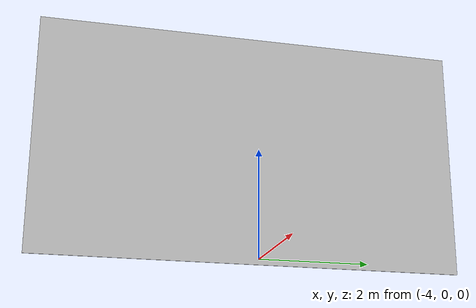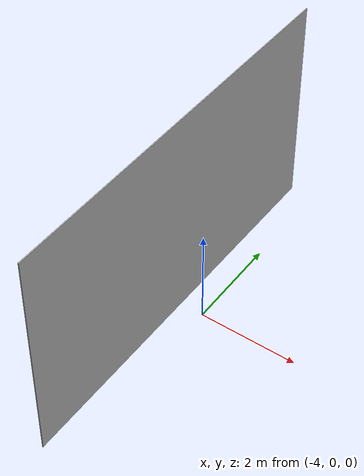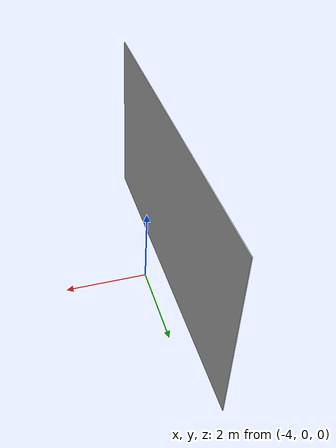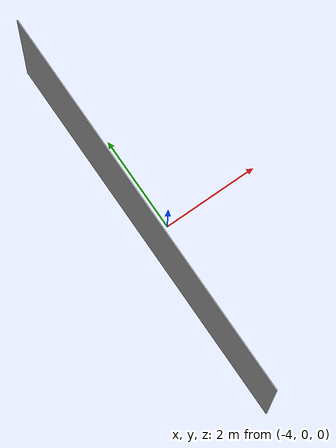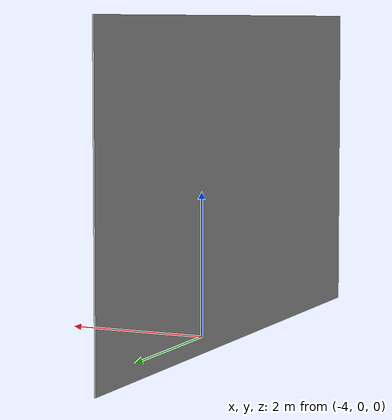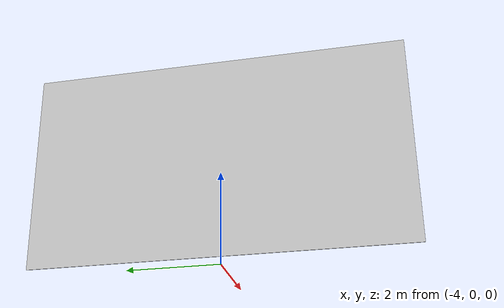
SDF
<?xml version="1.0"?>
<sdf version="1.7">
  <model name="vesuvio_scene">
    <static>true</static>
    <link name="scene_link">

      <visual name="vesuvio_background_visual">
        <pose>-4.5 0 2.2 0 0 0</pose>
        <geometry>
          <box>
            <size>0.02 8.0 4.4</size>
          </box>
        </geometry>
        <material>
          <script>
            <uri>model://vesuvio_scene/materials/scripts</uri>
            <uri>model://vesuvio_scene/materials/textures</uri>
            <name>Vesuvio/Texture</name>
          </script>
        </material>
      </visual>
    </link>
  </model>
</sdf>
